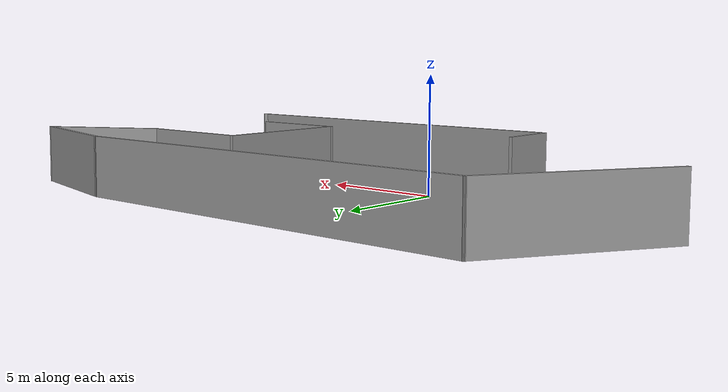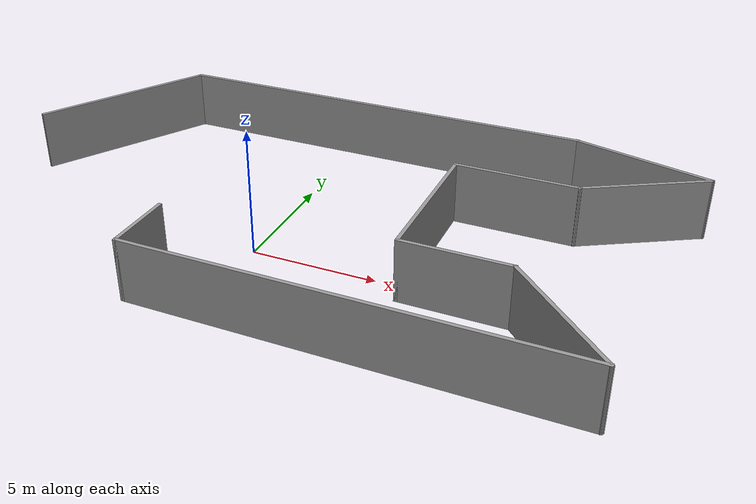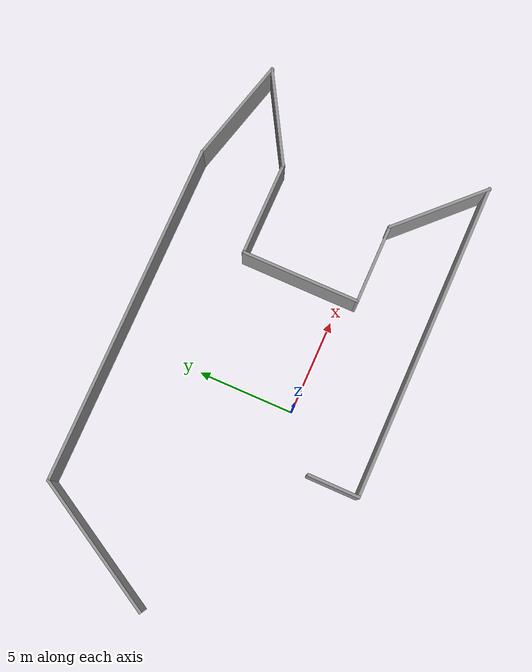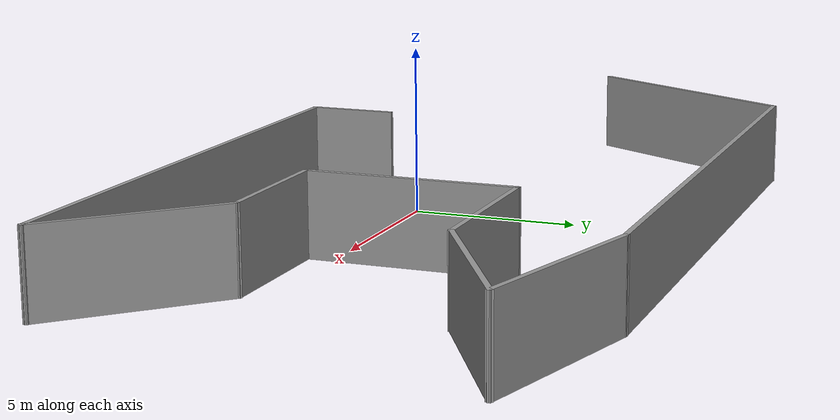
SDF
<?xml version='1.0'?>
<sdf version='1.6'>
  <model name='test.worlds'>
    <pose frame=''>1.83412 2.3594 0 0 -0 0</pose>
    <link name='Wall_0'>
      <collision name='Wall_0_Collision'>
        <geometry>
          <box>
            <size>2.75 0.15 2.5</size>
          </box>
        </geometry>
        <pose frame=''>0 0 1.25 0 -0 0</pose>
      </collision>
      <visual name='Wall_0_Visual'>
        <pose frame=''>0 0 1.25 0 -0 0</pose>
        <geometry>
          <box>
            <size>2.75 0.15 2.5</size>
          </box>
        </geometry>
        <material>
          <script>
            <uri>file://media/materials/scripts/gazebo.material</uri>
            <name>Gazebo/Grey</name>
          </script>
          <ambient>1 1 1 1</ambient>
        </material>
        <meta>
          <layer>0</layer>
        </meta>
      </visual>
      <pose frame=''>-4.45412 -5.6394 0 0 -0 -1.5708</pose>
    </link>
    <link name='Wall_1'>
      <collision name='Wall_1_Collision'>
        <geometry>
          <box>
            <size>16.75 0.15 2.5</size>
          </box>
        </geometry>
        <pose frame=''>0 0 1.25 0 -0 0</pose>
      </collision>
      <visual name='Wall_1_Visual'>
        <pose frame=''>0 0 1.25 0 -0 0</pose>
        <geometry>
          <box>
            <size>16.75 0.15 2.5</size>
          </box>
        </geometry>
        <material>
          <script>
            <uri>file://media/materials/scripts/gazebo.material</uri>
            <name>Gazebo/Grey</name>
          </script>
          <ambient>1 1 1 1</ambient>
        </material>
        <meta>
          <layer>0</layer>
        </meta>
      </visual>
      <pose frame=''>3.84588 -6.9394 0 0 -0 0</pose>
    </link>
    <link name='Wall_2'>
      <collision name='Wall_2_Collision'>
        <geometry>
          <box>
            <size>5.5 0.15 2.5</size>
          </box>
        </geometry>
        <pose frame=''>0 0 1.25 0 -0 0</pose>
      </collision>
      <visual name='Wall_2_Visual'>
        <pose frame=''>0 0 1.25 0 -0 0</pose>
        <geometry>
          <box>
            <size>5.5 0.15 2.5</size>
          </box>
        </geometry>
        <material>
          <script>
            <uri>file://media/materials/scripts/gazebo.material</uri>
            <name>Gazebo/Grey</name>
          </script>
          <ambient>1 1 1 1</ambient>
        </material>
        <meta>
          <layer>0</layer>
        </meta>
      </visual>
      <pose frame=''>10.2544 -5.04789 0 0 -0 2.35619</pose>
    </link>
    <link name='Wall_3'>
      <collision name='Wall_3_Collision'>
        <geometry>
          <box>
            <size>4.25 0.15 2.5</size>
          </box>
        </geometry>
        <pose frame=''>0 0 1.25 0 -0 0</pose>
      </collision>
      <visual name='Wall_3_Visual'>
        <pose frame=''>0 0 1.25 0 -0 0</pose>
        <geometry>
          <box>
            <size>4.25 0.15 2.5</size>
          </box>
        </geometry>
        <material>
          <script>
            <uri>file://media/materials/scripts/gazebo.material</uri>
            <name>Gazebo/Grey</name>
          </script>
          <ambient>1 1 1 1</ambient>
        </material>
        <meta>
          <layer>0</layer>
        </meta>
      </visual>
      <pose frame=''>6.31286 -3.15638 0 0 -0 3.14159</pose>
    </link>
    <link name='Wall_4'>
      <collision name='Wall_4_Collision'>
        <geometry>
          <box>
            <size>6.25 0.15 2.5</size>
          </box>
        </geometry>
        <pose frame=''>0 0 1.25 0 -0 0</pose>
      </collision>
      <visual name='Wall_4_Visual'>
        <pose frame=''>0 0 1.25 0 -0 0</pose>
        <geometry>
          <box>
            <size>6.25 0.15 2.5</size>
          </box>
        </geometry>
        <material>
          <script>
            <uri>file://media/materials/scripts/gazebo.material</uri>
            <name>Gazebo/Grey</name>
          </script>
          <ambient>1 1 1 1</ambient>
        </material>
        <meta>
          <layer>0</layer>
        </meta>
      </visual>
      <pose frame=''>4.26286 -0.106375 0 0 -0 1.5708</pose>
    </link>
    <link name='Wall_5'>
      <collision name='Wall_5_Collision'>
        <geometry>
          <box>
            <size>5 0.15 2.5</size>
          </box>
        </geometry>
        <pose frame=''>0 0 1.25 0 -0 0</pose>
      </collision>
      <visual name='Wall_5_Visual'>
        <pose frame=''>0 0 1.25 0 -0 0</pose>
        <geometry>
          <box>
            <size>5 0.15 2.5</size>
          </box>
        </geometry>
        <material>
          <script>
            <uri>file://media/materials/scripts/gazebo.material</uri>
            <name>Gazebo/Grey</name>
          </script>
          <ambient>1 1 1 1</ambient>
        </material>
        <meta>
          <layer>0</layer>
        </meta>
      </visual>
      <pose frame=''>6.68786 2.94362 0 0 -0 0</pose>
    </link>
    <link name='Wall_6'>
      <collision name='Wall_6_Collision'>
        <geometry>
          <box>
            <size>5.25 0.15 2.5</size>
          </box>
        </geometry>
        <pose frame=''>0 0 1.25 0 -0 0</pose>
      </collision>
      <visual name='Wall_6_Visual'>
        <pose frame=''>0 0 1.25 0 -0 0</pose>
        <geometry>
          <box>
            <size>5.25 0.15 2.5</size>
          </box>
        </geometry>
        <material>
          <script>
            <uri>file://media/materials/scripts/gazebo.material</uri>
            <name>Gazebo/Grey</name>
          </script>
          <ambient>1 1 1 1</ambient>
        </material>
        <meta>
          <layer>0</layer>
        </meta>
      </visual>
      <pose frame=''>11.3212 4.21863 0 0 -0 0.523599</pose>
    </link>
    <link name='Wall_7'>
      <collision name='Wall_7_Collision'>
        <geometry>
          <box>
            <size>5.75 0.15 2.5</size>
          </box>
        </geometry>
        <pose frame=''>0 0 1.25 0 -0 0</pose>
      </collision>
      <visual name='Wall_7_Visual'>
        <pose frame=''>0 0 1.25 0 -0 0</pose>
        <geometry>
          <box>
            <size>5.75 0.15 2.5</size>
          </box>
        </geometry>
        <material>
          <script>
            <uri>file://media/materials/scripts/gazebo.material</uri>
            <name>Gazebo/Grey</name>
          </script>
          <ambient>1 1 1 1</ambient>
        </material>
        <meta>
          <layer>0</layer>
        </meta>
      </visual>
      <pose frame=''>10.825 6.21832 0 0 -0 2.87979</pose>
    </link>
    <link name='Wall_8'>
      <collision name='Wall_8_Collision'>
        <geometry>
          <box>
            <size>18 0.15 2.5</size>
          </box>
        </geometry>
        <pose frame=''>0 0 1.25 0 -0 0</pose>
      </collision>
      <visual name='Wall_8_Visual'>
        <pose frame=''>0 0 1.25 0 -0 0</pose>
        <geometry>
          <box>
            <size>18 0.15 2.5</size>
          </box>
        </geometry>
        <material>
          <script>
            <uri>file://media/materials/scripts/gazebo.material</uri>
            <name>Gazebo/Grey</name>
          </script>
          <ambient>1 1 1 1</ambient>
        </material>
        <meta>
          <layer>0</layer>
        </meta>
      </visual>
      <pose frame=''>-0.804592 6.94301 0 0 -0 3.14159</pose>
    </link>
    <link name='Wall_9'>
      <collision name='Wall_9_Collision'>
        <geometry>
          <box>
            <size>7.75 0.15 2.5</size>
          </box>
        </geometry>
        <pose frame=''>0 0 1.25 0 -0 0</pose>
      </collision>
      <visual name='Wall_9_Visual'>
        <pose frame=''>0 0 1.25 0 -0 0</pose>
        <geometry>
          <box>
            <size>7.75 0.15 2.5</size>
          </box>
        </geometry>
        <material>
          <script>
            <uri>file://media/materials/scripts/gazebo.material</uri>
            <name>Gazebo/Grey</name>
          </script>
          <ambient>1 1 1 1</ambient>
        </material>
        <meta>
          <layer>0</layer>
        </meta>
      </visual>
      <pose frame=''>-11.6296 3.65211 0 0 -0 -2.0944</pose>
    </link>
    <static>1</static>
  </model>
</sdf>
